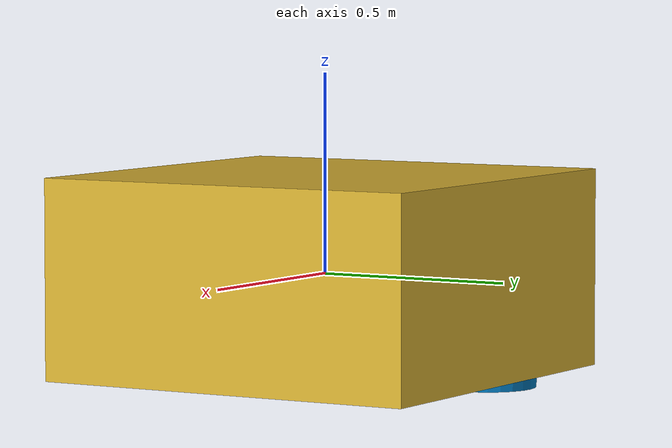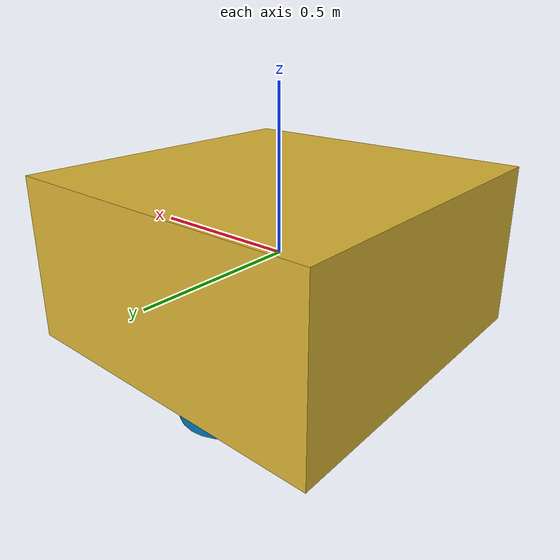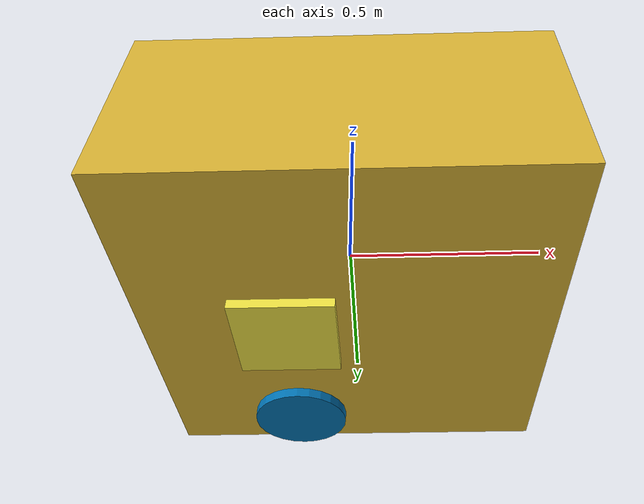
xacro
<?xml version="1.0"?>
<robot name="rover_dummy" xmlns:xacro="http://www.ros.org/wiki/xacro">
  <xacro:property name="mass" value="1.0" />
  <xacro:property name="damping" value="0.1" />
  <xacro:property name="friction" value="0.1" />
  <xacro:property name="size_base" value="1.0" />
  <xacro:property name="size_link" value="0.25" />
  <!-- Warning: the wheel_radius value must be the same as in the YAML configuration file-->
  <xacro:property name="wheel_radius" value="${size_link / 2}" />
  <xacro:property name="variant" value="1.0" />

  <xacro:property name="limit_drive_effort" value="100.0" />
  <xacro:property name="limit_drive_velocity" value="1.0" />
  <xacro:property name="limit_steer_effort" value="100.0" />
  <xacro:property name="limit_steer_lower" value="${-pi / 2}" />
  <xacro:property name="limit_steer_upper" value="${pi / 2}" />
  <xacro:property name="limit_steer_velocity" value="1.0" />

  <xacro:property name="side_boogie_lower" value="${-pi / 2}" />
  <xacro:property name="side_boogie_upper" value="${pi / 2}" />

  <!-- Import all Gazebo-customization elements, including Gazebo colors and plugins -->
  <xacro:include filename="$(find rover_config)/urdf/rover_dummy.gazebo" />

  <!-- Base of the rover, must be named "base_link" -->
  <link name="base_link">
    <collision>
      <origin xyz="0 0 0" rpy="0 0 0"/>
      <geometry>
        <box size="${size_base} ${size_base} ${size_base / 2}"/>
      </geometry>
    </collision>
    <inertial>
       <mass value="${mass}"/>
        <inertia
            ixx="${mass / 12.0 * (5 * size_base * size_base / 16)}"
            iyy="${mass / 12.0 * (5 * size_base * size_base / 16)}"
            izz="${mass / 12.0 * (size_base * size_base / 2)}"
            ixy="0"
            ixz="0"
            iyz="0"/>
    </inertial>
    <visual>
      <origin xyz="0 0 0" rpy="0 0 0"/>
      <geometry>
        <box size="${size_base} ${size_base} ${size_base / 2}"/>
      </geometry>
    </visual>
  </link>

  <!-- Definition for a side boogie assembly -->
  <xacro:macro name="side_boogie" params="position *origin_boogie">

    <xacro:property name="boogie_link" value="link_boogie_${position}" />

    <joint name="joint_boogie_${position}" type="fixed">
      <parent link="base_link"/>
      <child link="link_boogie_${position}"/>
      <xacro:insert_block name="origin_boogie" />
      <limit effort="0" lower="${side_boogie_lower}" upper="${side_boogie_upper}" velocity="0"/>
      <axis xyz="0 1 0"/>
    </joint>

    <link name="link_boogie_${position}">
      <collision>
        <geometry>
          <cylinder length="0.3" radius="0.05"/>
        </geometry>
      </collision>

      <inertial>
        <mass value="${mass}"/>
        <inertia
              ixx="${mass / 12.0 * (size_link * size_link / 2)}"
              iyy="${mass / 12.0 * (size_link * size_link / 2)}"
              izz="${mass / 12.0 * (size_link * size_link / 2)}"
              ixy="0"
              ixz="0"
              iyz="0"/>
      </inertial>

      <visual>
        <origin xyz="0 0 0" rpy="0 0 0"/>
        <geometry>
          <cylinder length="0.3" radius="0.05"/>
        </geometry>
      </visual>
    </link>

  </xacro:macro>

  <!-- Definition for a wheel assembly -->
  <xacro:macro name="wheel_assembly" params="position variant boogie_name *origin_DEP">
    <joint name="joint_DEP_${position}" type="fixed">
      <parent link="link_boogie_${boogie_name}"/>
      <child link="link_DEP_${position}"/>
      <limit effort="${limit_steer_effort}" lower="${limit_steer_lower}" upper="${limit_steer_upper}" velocity="${limit_steer_velocity}"/>
      <xacro:insert_block name="origin_DEP" />
      <axis xyz="0 0 1"/>
      <dynamics damping="${damping}" friction="${friction}"/>
    </joint>

    <link name="link_DEP_${position}">
      <collision>
        <origin xyz="0 0 0" rpy="0 0 0"/>
        <geometry>
          <box size="${size_link} ${size_link} ${size_link}"/>
        </geometry>
      </collision>
      <inertial>
          <mass value="${mass}"/>
          <inertia
              ixx="${mass / 12.0 * (size_link * size_link / 2)}"
              iyy="${mass / 12.0 * (size_link * size_link / 2)}"
              izz="${mass / 12.0 * (size_link * size_link / 2)}"
              ixy="0"
              ixz="0"
              iyz="0"/>
      </inertial>
      <visual>
        <origin xyz="0 0 0" rpy="0 0 0"/>
        <geometry>
          <box size="${size_link} ${size_link} ${size_link}"/>
        </geometry>
      </visual>
    </link>

    <joint name="joint_STR_${position}" type="fixed">
      <parent link="link_DEP_${position}"/>
      <child link="link_STR_${position}"/>
      <limit effort="${limit_steer_effort}" lower="${limit_steer_lower}" upper="${limit_steer_upper}" velocity="${limit_steer_velocity}"/>
      <origin xyz="-0.15 0 0.15" rpy="-1.57 0 0"/>
      <axis xyz="0 0 1"/>
      <dynamics damping="${damping}" friction="${friction}"/>
    </joint>

    <link name="link_STR_${position}">
      <collision>
        <origin xyz="0 0 0" rpy="0 0 0"/>
        <geometry>
          <box size="${size_link} ${size_link} ${size_link}"/>
        </geometry>
      </collision>
      <inertial>
          <mass value="${mass}"/>
          <inertia
              ixx="${mass / 12.0 * (size_link * size_link / 2)}"
              iyy="${mass / 12.0 * (size_link * size_link / 2)}"
              izz="${mass / 12.0 * (size_link * size_link / 2)}"
              ixy="0"
              ixz="0"
              iyz="0"/>
      </inertial>
      <visual>
        <origin xyz="0 0 0" rpy="0 0 0"/>
        <geometry>
          <box size="${size_link} ${size_link} ${size_link}"/>
        </geometry>
      </visual>
    </link>

    <joint name="joint_DRV_${position}" type="fixed">
      <parent link="link_STR_${position}"/>
      <child link="link_DRV_${position}"/>
      <limit effort="${limit_drive_effort}" velocity="${limit_drive_velocity}"/>
      <origin xyz="0 0 ${-size_link / 2 - 2 * wheel_radius}" rpy="-1.57 0 0"/>
      <axis xyz="0 1 0"/>
      <dynamics damping="${damping}" friction="${friction}"/>
    </joint>

    <link name="link_DRV_${position}">
      <collision>
        <origin xyz="0 0 0" rpy="0 0 0"/>
        <geometry>
          <cylinder length="${size_link}" radius="${wheel_radius}"/>
        </geometry>
      </collision>
      <inertial>
          <mass value="${mass}"/>
          <inertia
              ixx="${mass / 12.0 * (3 * wheel_radius * wheel_radius + size_link * size_link)}"
              iyy="${mass / 12.0 * (3 * wheel_radius * wheel_radius + size_link * size_link)}"
              izz="${mass / 2.0 * wheel_radius * wheel_radius}"
              ixy="0"
              ixz="0"
              iyz="0"/>
      </inertial>
      <visual>
        <origin xyz="0 0 0" rpy="0 0 0"/>
        <geometry>
          <cylinder length="${size_link}" radius="${wheel_radius}"/>
        </geometry>
      </visual>
    </link>

    <transmission name=" _STR_${position}">
      <type>transmission_interface/SimpleTransmission</type>
      <joint name="joint_STR_${position}">
        <hardwareInterface>hardware_interface/EffortJointInterface</hardwareInterface>
      </joint>
      <actuator name="motor_STR_${position}">
        <mechanicalReduction>1</mechanicalReduction>
      </actuator>
    </transmission>

    <transmission name="transmission_DRV_${position}">
      <type>transmission_interface/SimpleTransmission</type>
      <joint name="joint_DRV_${position}">
        <hardwareInterface>hardware_interface/EffortJointInterface</hardwareInterface>
      </joint>
      <actuator name="motor_DRV_${position}">
        <mechanicalReduction>1</mechanicalReduction>
      </actuator>
    </transmission>
  </xacro:macro>

  <!-- Define all the wheel assemblies as set their positions -->
  <xacro:property name="boogie_name" value="L" />

  <xacro:side_boogie position="${boogie_name}">
    <origin xyz="0 0 0" rpy="1.57 0 0"/>
  </xacro:side_boogie>

  <xacro:wheel_assembly position="RR" variant="1.0" boogie_name="${boogie_name}">
    <origin xyz="0 0 0" rpy="1.57 0 0"/>
  </xacro:wheel_assembly>

  <xacro:wheel_assembly position="RM" variant="1.0" boogie_name="${boogie_name}">
    <origin xyz="0 0 0" rpy="1.57 0 0"/>
  </xacro:wheel_assembly>

</robot>
